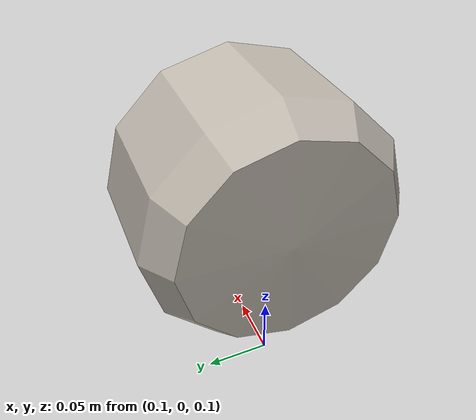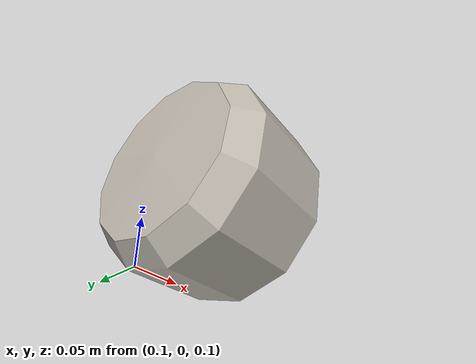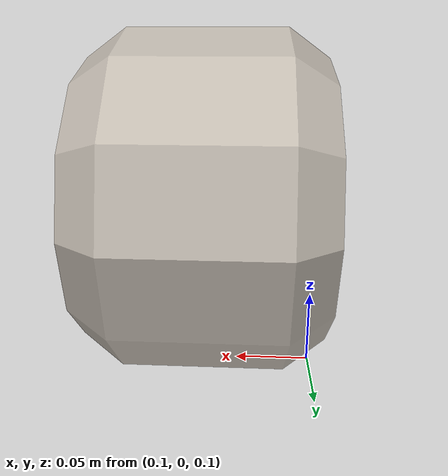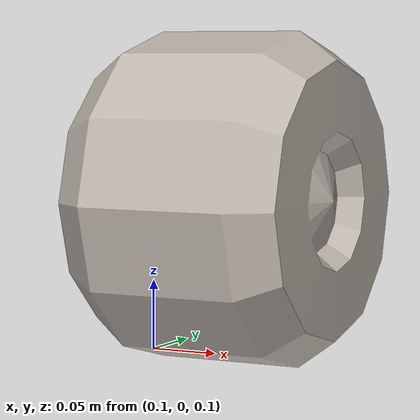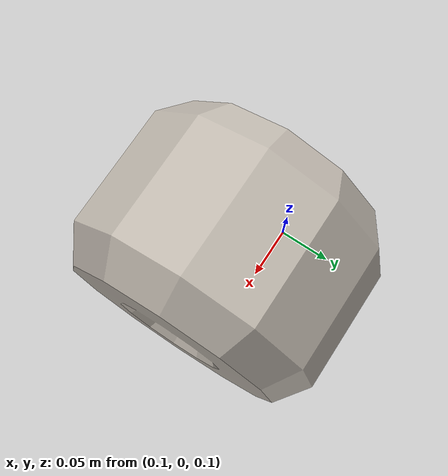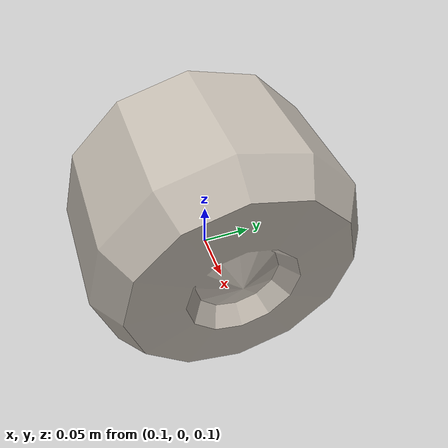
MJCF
<mujoco model="spacetruck_large_wheel_front_left">
  <default>
    <default class="visual">
      <geom group="2" type="mesh" contype="0" conaffinity="0" />
    </default>
    <default class="collision">
      <geom group="3" type="mesh" />
    </default>
  </default>
  <asset>
    <texture type="2d" name="spacetruck_large_wheel_front_left_spacebits_texture" file="spacebits_texture.png" />
    <material name="spacetruck_large_wheel_front_left_spacebits_texture" texture="spacetruck_large_wheel_front_left_spacebits_texture" specular="0.50196078" shininess="0.15999998099999999" />
    <mesh file="spacetruck_large_wheel_front_left.obj" name="spacetruck_large_wheel_front_left_spacetruck_large_wheel_front_left" />
  </asset>
  <worldbody>
    <body name="spacetruck_large_wheel_front_left">
      <geom material="spacetruck_large_wheel_front_left_spacebits_texture" mesh="spacetruck_large_wheel_front_left_spacetruck_large_wheel_front_left" class="visual" />
      <geom mesh="spacetruck_large_wheel_front_left_spacetruck_large_wheel_front_left" class="collision" />
    </body>
  </worldbody>
</mujoco>
